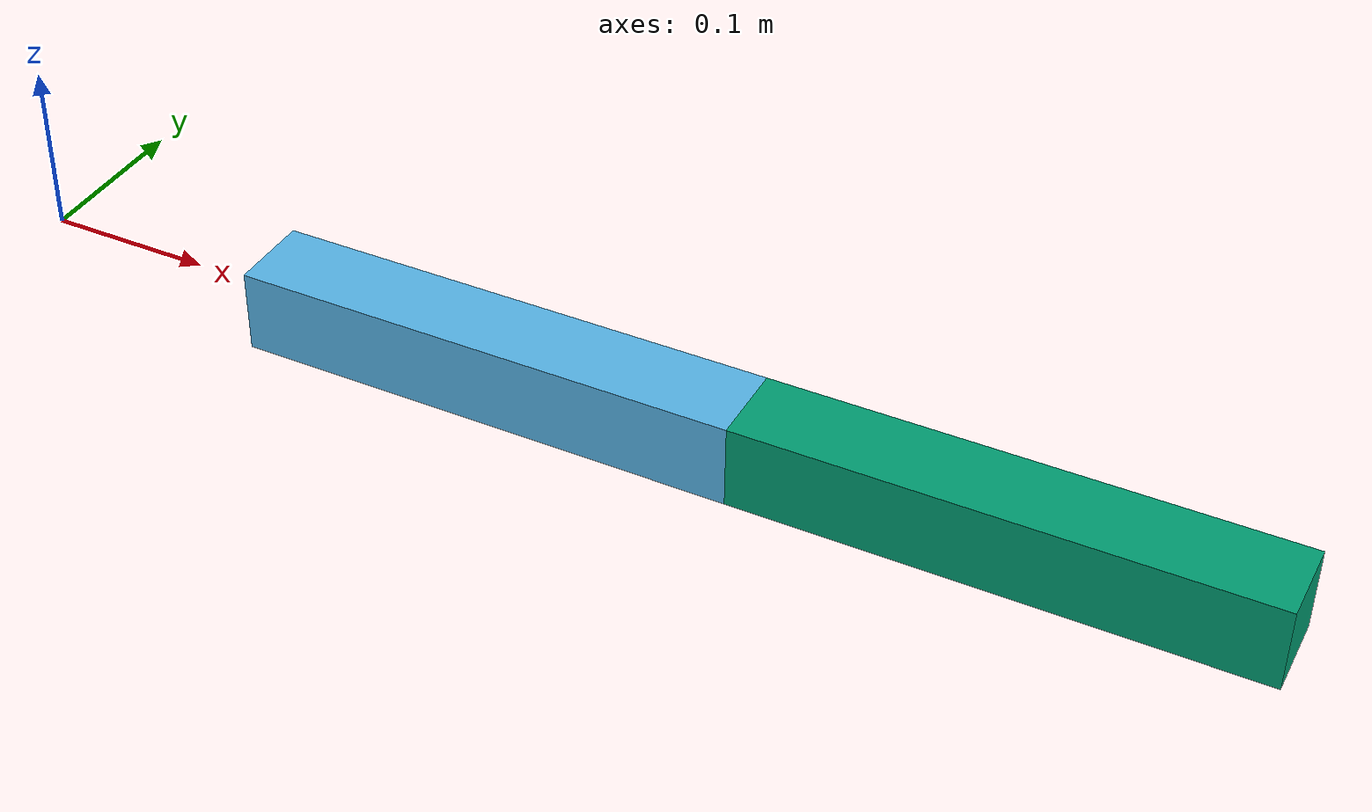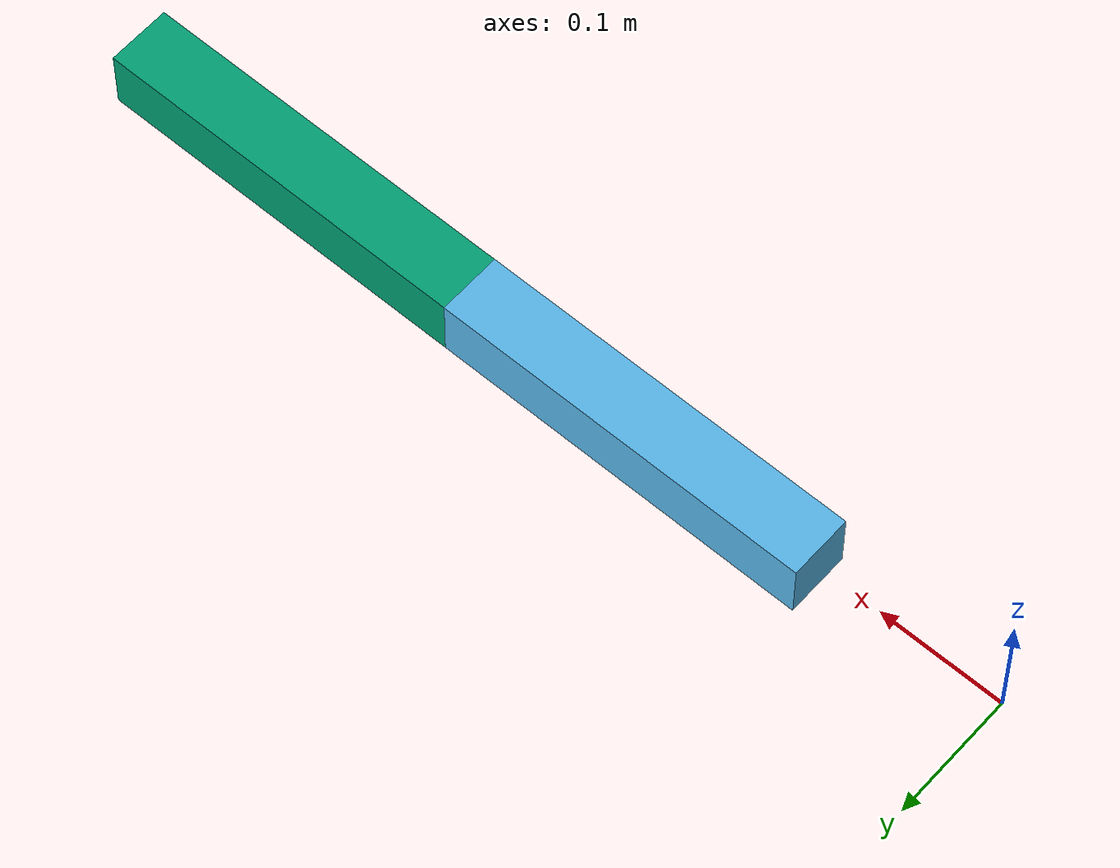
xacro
<?xml version="1.0"?>
<robot xmlns:xacro="http://ros.org/wiki/xacro" name="robot_arm1">

  <!-- 파라미터 -->
  <xacro:property name="link_length" value="0.3"/>

  <!-- 매크로 정의 -->
  <xacro:macro name="make_link" params="name length parent">
    <link name="${name}">
      <visual>
        <geometry>
          <box size="${length} 0.05 0.05"/>
        </geometry>
      </visual>
    </link>

    <joint name="${name}_joint" type="revolute">
      <parent link="${parent}"/>
      <child link="${name}"/>
      <origin xyz="${length} 0 0" rpy="0 0 0"/>
      <axis xyz="0 0 1"/>
      <limit lower="-1.57" upper="1.57" effort="1.0" velocity="1.0"/>
    </joint>
  </xacro:macro>

  <!-- 루트 링크 -->
  <link name="base_link"/>

  <!-- 매크로 호출 -->
  <xacro:make_link name="link1" length="${link_length}" parent="base_link"/>
  <xacro:make_link name="link2" length="${link_length}" parent="link1"/>

</robot>
